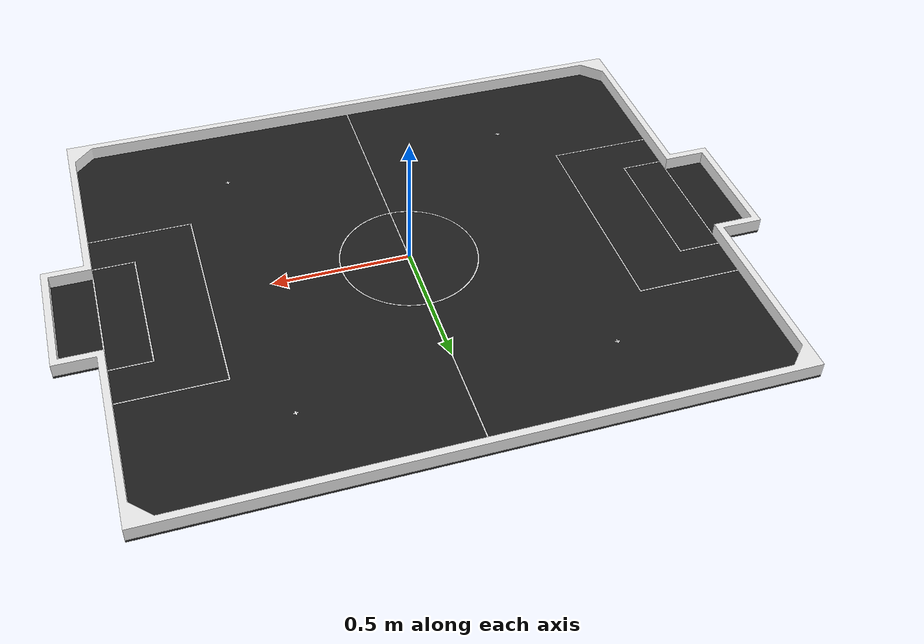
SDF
<?xml version="1.0" ?>

<!-- Physical parameters (contact properties) taken from
https://bitbucket.org/osrf/gazebo/src/gazebo11/models/ground_plane/model.sdf -->

<sdf version="1.5">
  <model name='vss_field'>

    <static>true</static>

    <link name='base_link'>
      <pose frame=''>0 0 0 0 0 0</pose>

      <collision name='base_link_collision'>
        <pose>0 0 -0.005 0 0 0</pose>
        <geometry>
          <box>
            <size>2.55 1.85 0.01</size>
          </box>
        </geometry>
        <surface>
          <friction>
            <ode>
              <mu>0.6</mu>
              <mu2>0.6</mu2>
            </ode>
            <torsional>
              <ode/>
            </torsional>
          </friction>
          <bounce/>
        </surface>
        <max_contacts>20</max_contacts>
      </collision>
      <collision name='laterais_link_collision'>
        <pose frame=''>0 0 0 0 0 0</pose>
        <geometry>
          <mesh>
            <scale>1 1 1</scale>
            <uri>model://vss_field_5/meshes/laterais_link.stl</uri>
          </mesh>
        </geometry>
      </collision>

      <visual name='base_link_visual'>
        <pose frame=''>0 0 0 0 0 0</pose>
        <geometry>
          <mesh>
            <scale>1 1 1</scale>
            <uri>model://vss_field_5/meshes/base_link.stl</uri>
          </mesh>
        </geometry>
        <material>
          <script>
            <name>Gazebo/Black</name>
            <uri>file://media/materials/scripts/gazebo.material</uri>
          </script>
        </material>
      </visual>

      <visual name='marcas_campo_visual'>
        <pose frame=''>0 0 0.0001 0 0 0</pose>
        <geometry>
          <mesh>
            <scale>1 1 1</scale>
            <uri>model://vss_field_5/meshes/marcas_campo.stl</uri>
          </mesh>
        </geometry>
        <material>
          <script>
            <name>Gazebo/White</name>
            <uri>file://media/materials/scripts/gazebo.material</uri>
          </script>
        </material>
      </visual>

      <visual name='laterais_link_visual'>
        <pose frame=''>0 0 0 0 0 0</pose>
        <geometry>
          <mesh>
            <scale>1 1 1</scale>
            <uri>model://vss_field_5/meshes/laterais_link.stl</uri>
          </mesh>
        </geometry>
        <material>
          <script>
            <name>Gazebo/White</name>
            <uri>file://media/materials/scripts/gazebo.material</uri>
          </script>
        </material>
      </visual>

    </link>

  </model>
</sdf>
